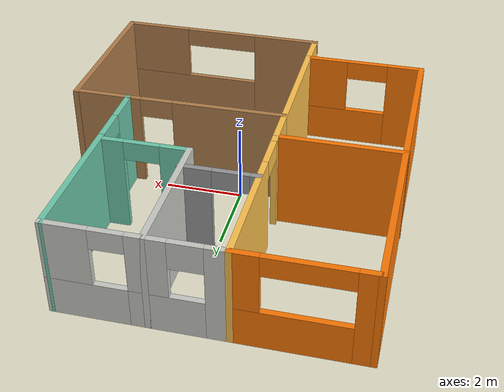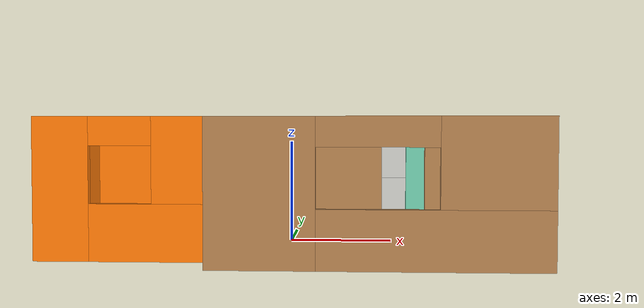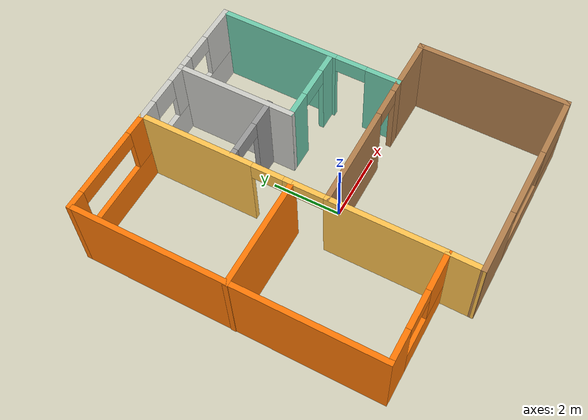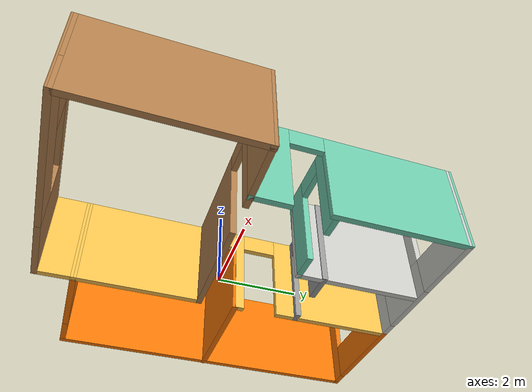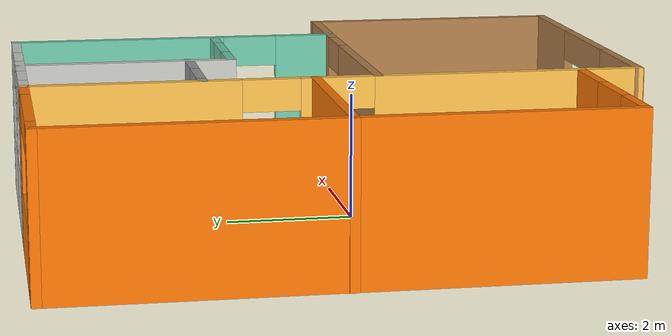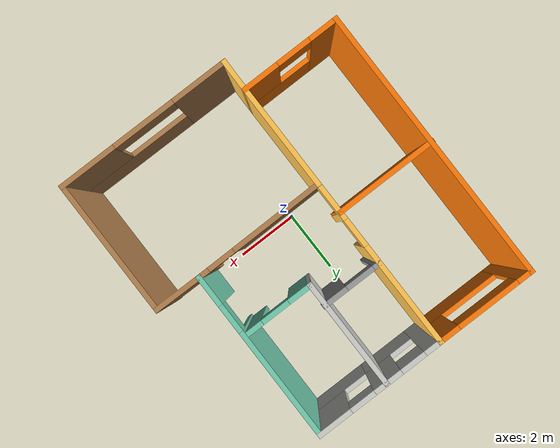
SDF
<?xml version='1.0'?>
<sdf version='1.6'>
  <model name='groundfloor'>
    <pose frame=''>0.105601 0.395796 0 0 -0 0</pose>
    <link name='Wall_16'>
      <collision name='Wall_16_Collision'>
        <geometry>
          <box>
            <size>8.75 0.15 2.5</size>
          </box>
        </geometry>
        <pose frame=''>0 0 1.25 0 -0 0</pose>
      </collision>
      <visual name='Wall_16_Visual'>
        <pose frame=''>0 0 1.25 0 -0 0</pose>
        <geometry>
          <box>
            <size>8.75 0.15 2.5</size>
          </box>
        </geometry>
        <material>
          <script>
            <uri>file://media/materials/scripts/gazebo.material</uri>
            <name>Gazebo/Grey</name>
          </script>
          <ambient>0.996078 0.47451 0.0196078 1</ambient>
        </material>
        <meta>
          <layer>0</layer>
        </meta>
      </visual>
      <pose frame=''>-4.29827 0.476573 0 0 0 -1.5708</pose>
    </link>
    <link name='Wall_17'>
      <pose frame=''>-2.74827 -3.82343 0 0 -0 0</pose>
      <visual name='Wall_17_Visual_0'>
        <pose frame=''>-1.1364 0 1.25 0 -0 0</pose>
        <geometry>
          <box>
            <size>0.97721 0.15 2.5</size>
          </box>
        </geometry>
        <material>
          <script>
            <uri>file://media/materials/scripts/gazebo.material</uri>
            <name>Gazebo/Grey</name>
          </script>
          <ambient>0.996078 0.47451 0.0196078 1</ambient>
        </material>
        <meta>
          <layer>0</layer>
        </meta>
      </visual>
      <collision name='Wall_17_Collision_0'>
        <geometry>
          <box>
            <size>0.97721 0.15 2.5</size>
          </box>
        </geometry>
        <pose frame=''>-1.1364 0 1.25 0 -0 0</pose>
      </collision>
      <visual name='Wall_17_Visual_1'>
        <pose frame=''>0.488605 0 0.5 0 -0 0</pose>
        <geometry>
          <box>
            <size>2.27279 0.15 1</size>
          </box>
        </geometry>
        <material>
          <script>
            <uri>file://media/materials/scripts/gazebo.material</uri>
            <name>Gazebo/Grey</name>
          </script>
          <ambient>0.996078 0.47451 0.0196078 1</ambient>
        </material>
        <meta>
          <layer>0</layer>
        </meta>
      </visual>
      <collision name='Wall_17_Collision_1'>
        <geometry>
          <box>
            <size>2.27279 0.15 1</size>
          </box>
        </geometry>
        <pose frame=''>0.488605 0 0.5 0 -0 0</pose>
      </collision>
      <visual name='Wall_17_Visual_2'>
        <pose frame=''>1.0331 0 1.75 0 -0 0</pose>
        <geometry>
          <box>
            <size>1.18379 0.15 1.5</size>
          </box>
        </geometry>
        <material>
          <script>
            <uri>file://media/materials/scripts/gazebo.material</uri>
            <name>Gazebo/Grey</name>
          </script>
          <ambient>0.996078 0.47451 0.0196078 1</ambient>
        </material>
        <meta>
          <layer>0</layer>
        </meta>
      </visual>
      <collision name='Wall_17_Collision_2'>
        <geometry>
          <box>
            <size>1.18379 0.15 1.5</size>
          </box>
        </geometry>
        <pose frame=''>1.0331 0 1.75 0 -0 0</pose>
      </collision>
      <visual name='Wall_17_Visual_3'>
        <pose frame=''>-0.10329 0 2.25 0 -0 0</pose>
        <geometry>
          <box>
            <size>1.089 0.15 0.5</size>
          </box>
        </geometry>
        <material>
          <script>
            <uri>file://media/materials/scripts/gazebo.material</uri>
            <name>Gazebo/Grey</name>
          </script>
          <ambient>0.996078 0.47451 0.0196078 1</ambient>
        </material>
        <meta>
          <layer>0</layer>
        </meta>
      </visual>
      <collision name='Wall_17_Collision_3'>
        <geometry>
          <box>
            <size>1.089 0.15 0.5</size>
          </box>
        </geometry>
        <pose frame=''>-0.10329 0 2.25 0 -0 0</pose>
      </collision>
    </link>
    <link name='Wall_18'>
      <pose frame=''>-1.19827 0.476573 0 0 -0 1.5708</pose>
      <visual name='Wall_18_Visual_0'>
        <pose frame=''>-2.69425 0 1.25 0 -0 0</pose>
        <geometry>
          <box>
            <size>3.3615 0.15 2.5</size>
          </box>
        </geometry>
        <material>
          <script>
            <uri>file://media/materials/scripts/gazebo.material</uri>
            <name>Gazebo/Grey</name>
          </script>
          <ambient>1 0.764706 0.305882 1</ambient>
        </material>
        <meta>
          <layer>0</layer>
        </meta>
      </visual>
      <collision name='Wall_18_Collision_0'>
        <geometry>
          <box>
            <size>3.3615 0.15 2.5</size>
          </box>
        </geometry>
        <pose frame=''>-2.69425 0 1.25 0 -0 0</pose>
      </collision>
      <visual name='Wall_18_Visual_1'>
        <pose frame=''>0.008535 0 1.25 0 -0 0</pose>
        <geometry>
          <box>
            <size>0.244078 0.15 2.5</size>
          </box>
        </geometry>
        <material>
          <script>
            <uri>file://media/materials/scripts/gazebo.material</uri>
            <name>Gazebo/Grey</name>
          </script>
          <ambient>1 0.764706 0.305882 1</ambient>
        </material>
        <meta>
          <layer>0</layer>
        </meta>
      </visual>
      <collision name='Wall_18_Collision_1'>
        <geometry>
          <box>
            <size>0.244078 0.15 2.5</size>
          </box>
        </geometry>
        <pose frame=''>0.008535 0 1.25 0 -0 0</pose>
      </collision>
      <visual name='Wall_18_Visual_2'>
        <pose frame=''>2.70279 0 1.25 0 -0 0</pose>
        <geometry>
          <box>
            <size>3.34443 0.15 2.5</size>
          </box>
        </geometry>
        <material>
          <script>
            <uri>file://media/materials/scripts/gazebo.material</uri>
            <name>Gazebo/Grey</name>
          </script>
          <ambient>1 0.764706 0.305882 1</ambient>
        </material>
        <meta>
          <layer>0</layer>
        </meta>
      </visual>
      <collision name='Wall_18_Collision_2'>
        <geometry>
          <box>
            <size>3.34443 0.15 2.5</size>
          </box>
        </geometry>
        <pose frame=''>2.70279 0 1.25 0 -0 0</pose>
      </collision>
      <visual name='Wall_18_Visual_3'>
        <pose frame=''>-0.563504 0 2.25 0 -0 0</pose>
        <geometry>
          <box>
            <size>0.9 0.15 0.5</size>
          </box>
        </geometry>
        <material>
          <script>
            <uri>file://media/materials/scripts/gazebo.material</uri>
            <name>Gazebo/Grey</name>
          </script>
          <ambient>1 0.764706 0.305882 1</ambient>
        </material>
        <meta>
          <layer>0</layer>
        </meta>
      </visual>
      <collision name='Wall_18_Collision_3'>
        <geometry>
          <box>
            <size>0.9 0.15 0.5</size>
          </box>
        </geometry>
        <pose frame=''>-0.563504 0 2.25 0 -0 0</pose>
      </collision>
      <visual name='Wall_18_Visual_4'>
        <pose frame=''>0.580574 0 2.25 0 -0 0</pose>
        <geometry>
          <box>
            <size>0.9 0.15 0.5</size>
          </box>
        </geometry>
        <material>
          <script>
            <uri>file://media/materials/scripts/gazebo.material</uri>
            <name>Gazebo/Grey</name>
          </script>
          <ambient>1 0.764706 0.305882 1</ambient>
        </material>
        <meta>
          <layer>0</layer>
        </meta>
      </visual>
      <collision name='Wall_18_Collision_4'>
        <geometry>
          <box>
            <size>0.9 0.15 0.5</size>
          </box>
        </geometry>
        <pose frame=''>0.580574 0 2.25 0 -0 0</pose>
      </collision>
    </link>
    <link name='Wall_19'>
      <pose frame=''>0.851726 4.77657 0 0 -0 0</pose>
      <visual name='Wall_19_Visual_0'>
        <pose frame=''>-1.82787 0 1.25 0 -0 0</pose>
        <geometry>
          <box>
            <size>0.594267 0.15 2.5</size>
          </box>
        </geometry>
        <material>
          <script>
            <uri>file://media/materials/scripts/gazebo.material</uri>
            <name>Gazebo/CeilingTiled</name>
          </script>
          <ambient>0.435294 0.796078 0.67451 1</ambient>
        </material>
        <meta>
          <layer>0</layer>
        </meta>
      </visual>
      <collision name='Wall_19_Collision_0'>
        <geometry>
          <box>
            <size>0.594267 0.15 2.5</size>
          </box>
        </geometry>
        <pose frame=''>-1.82787 0 1.25 0 -0 0</pose>
      </collision>
      <visual name='Wall_19_Visual_1'>
        <pose frame=''>-0.671108 0 0.5 0 -0 0</pose>
        <geometry>
          <box>
            <size>1.71925 0.15 1</size>
          </box>
        </geometry>
        <material>
          <script>
            <uri>file://media/materials/scripts/gazebo.material</uri>
            <name>Gazebo/CeilingTiled</name>
          </script>
          <ambient>0.435294 0.796078 0.67451 1</ambient>
        </material>
        <meta>
          <layer>0</layer>
        </meta>
      </visual>
      <collision name='Wall_19_Collision_1'>
        <geometry>
          <box>
            <size>1.71925 0.15 1</size>
          </box>
        </geometry>
        <pose frame=''>-0.671108 0 0.5 0 -0 0</pose>
      </collision>
      <visual name='Wall_19_Visual_2'>
        <pose frame=''>1.15676 0 0.5 0 -0 0</pose>
        <geometry>
          <box>
            <size>1.93648 0.15 1</size>
          </box>
        </geometry>
        <material>
          <script>
            <uri>file://media/materials/scripts/gazebo.material</uri>
            <name>Gazebo/CeilingTiled</name>
          </script>
          <ambient>0.435294 0.796078 0.67451 1</ambient>
        </material>
        <meta>
          <layer>0</layer>
        </meta>
      </visual>
      <collision name='Wall_19_Collision_2'>
        <geometry>
          <box>
            <size>1.93648 0.15 1</size>
          </box>
        </geometry>
        <pose frame=''>1.15676 0 0.5 0 -0 0</pose>
      </collision>
      <visual name='Wall_19_Visual_3'>
        <pose frame=''>1.55676 0 1.75 0 -0 0</pose>
        <geometry>
          <box>
            <size>1.13648 0.15 1.5</size>
          </box>
        </geometry>
        <material>
          <script>
            <uri>file://media/materials/scripts/gazebo.material</uri>
            <name>Gazebo/CeilingTiled</name>
          </script>
          <ambient>0.435294 0.796078 0.67451 1</ambient>
        </material>
        <meta>
          <layer>0</layer>
        </meta>
      </visual>
      <collision name='Wall_19_Collision_3'>
        <geometry>
          <box>
            <size>1.13648 0.15 1.5</size>
          </box>
        </geometry>
        <pose frame=''>1.55676 0 1.75 0 -0 0</pose>
      </collision>
      <visual name='Wall_19_Visual_4'>
        <pose frame=''>-0.271108 0 1.75 0 -0 0</pose>
        <geometry>
          <box>
            <size>0.91925 0.15 1.5</size>
          </box>
        </geometry>
        <material>
          <script>
            <uri>file://media/materials/scripts/gazebo.material</uri>
            <name>Gazebo/CeilingTiled</name>
          </script>
          <ambient>0.435294 0.796078 0.67451 1</ambient>
        </material>
        <meta>
          <layer>0</layer>
        </meta>
      </visual>
      <collision name='Wall_19_Collision_4'>
        <geometry>
          <box>
            <size>0.91925 0.15 1.5</size>
          </box>
        </geometry>
        <pose frame=''>-0.271108 0 1.75 0 -0 0</pose>
      </collision>
      <visual name='Wall_19_Visual_5'>
        <pose frame=''>-0.271108 0 1.75 0 -0 0</pose>
        <geometry>
          <box>
            <size>0.91925 0.15 1.5</size>
          </box>
        </geometry>
        <material>
          <script>
            <uri>file://media/materials/scripts/gazebo.material</uri>
            <name>Gazebo/CeilingTiled</name>
          </script>
          <ambient>0.435294 0.796078 0.67451 1</ambient>
        </material>
        <meta>
          <layer>0</layer>
        </meta>
      </visual>
      <collision name='Wall_19_Collision_5'>
        <geometry>
          <box>
            <size>0.91925 0.15 1.5</size>
          </box>
        </geometry>
        <pose frame=''>-0.271108 0 1.75 0 -0 0</pose>
      </collision>
      <visual name='Wall_19_Visual_6'>
        <pose frame=''>-1.13073 0 2.15 0 -0 0</pose>
        <geometry>
          <box>
            <size>0.8 0.15 0.7</size>
          </box>
        </geometry>
        <material>
          <script>
            <uri>file://media/materials/scripts/gazebo.material</uri>
            <name>Gazebo/CeilingTiled</name>
          </script>
          <ambient>0.435294 0.796078 0.67451 1</ambient>
        </material>
        <meta>
          <layer>0</layer>
        </meta>
      </visual>
      <collision name='Wall_19_Collision_6'>
        <geometry>
          <box>
            <size>0.8 0.15 0.7</size>
          </box>
        </geometry>
        <pose frame=''>-1.13073 0 2.15 0 -0 0</pose>
      </collision>
      <visual name='Wall_19_Visual_7'>
        <pose frame=''>0.588517 0 2.25 0 -0 0</pose>
        <geometry>
          <box>
            <size>0.8 0.15 0.5</size>
          </box>
        </geometry>
        <material>
          <script>
            <uri>file://media/materials/scripts/gazebo.material</uri>
            <name>Gazebo/CeilingTiled</name>
          </script>
          <ambient>0.435294 0.796078 0.67451 1</ambient>
        </material>
        <meta>
          <layer>0</layer>
        </meta>
      </visual>
      <collision name='Wall_19_Collision_7'>
        <geometry>
          <box>
            <size>0.8 0.15 0.5</size>
          </box>
        </geometry>
        <pose frame=''>0.588517 0 2.25 0 -0 0</pose>
      </collision>
      <visual name='Wall_19_Visual_8'>
        <pose frame=''>0.588517 0 2.25 0 -0 0</pose>
        <geometry>
          <box>
            <size>0.8 0.15 0.5</size>
          </box>
        </geometry>
        <material>
          <script>
            <uri>file://media/materials/scripts/gazebo.material</uri>
            <name>Gazebo/CeilingTiled</name>
          </script>
          <ambient>0.435294 0.796078 0.67451 1</ambient>
        </material>
        <meta>
          <layer>0</layer>
        </meta>
      </visual>
      <collision name='Wall_19_Collision_8'>
        <geometry>
          <box>
            <size>0.8 0.15 0.5</size>
          </box>
        </geometry>
        <pose frame=''>0.588517 0 2.25 0 -0 0</pose>
      </collision>
    </link>
    <link name='Wall_20'>
      <pose frame=''>2.89412 2.1049 0 0 0 -1.57364</pose>
      <visual name='Wall_20_Visual_0'>
        <pose frame=''>-0.956226 0 1.25 0 -0 0</pose>
        <geometry>
          <box>
            <size>3.58091 0.15 2.5</size>
          </box>
        </geometry>
        <material>
          <script>
            <uri>file://media/materials/scripts/gazebo.material</uri>
            <name>Gazebo/Grey</name>
          </script>
          <ambient>0.435294 0.796078 0.67451 1</ambient>
        </material>
        <meta>
          <layer>0</layer>
        </meta>
      </visual>
      <collision name='Wall_20_Collision_0'>
        <geometry>
          <box>
            <size>3.58091 0.15 2.5</size>
          </box>
        </geometry>
        <pose frame=''>-0.956226 0 1.25 0 -0 0</pose>
      </collision>
      <visual name='Wall_20_Visual_1'>
        <pose frame=''>2.24045 0 1.25 0 -0 0</pose>
        <geometry>
          <box>
            <size>1.01245 0.15 2.5</size>
          </box>
        </geometry>
        <material>
          <script>
            <uri>file://media/materials/scripts/gazebo.material</uri>
            <name>Gazebo/Grey</name>
          </script>
          <ambient>0.435294 0.796078 0.67451 1</ambient>
        </material>
        <meta>
          <layer>0</layer>
        </meta>
      </visual>
      <collision name='Wall_20_Collision_1'>
        <geometry>
          <box>
            <size>1.01245 0.15 2.5</size>
          </box>
        </geometry>
        <pose frame=''>2.24045 0 1.25 0 -0 0</pose>
      </collision>
      <visual name='Wall_20_Visual_2'>
        <pose frame=''>1.28423 0 2.25 0 -0 0</pose>
        <geometry>
          <box>
            <size>0.9 0.15 0.5</size>
          </box>
        </geometry>
        <material>
          <script>
            <uri>file://media/materials/scripts/gazebo.material</uri>
            <name>Gazebo/Grey</name>
          </script>
          <ambient>0.435294 0.796078 0.67451 1</ambient>
        </material>
        <meta>
          <layer>0</layer>
        </meta>
      </visual>
      <collision name='Wall_20_Collision_2'>
        <geometry>
          <box>
            <size>0.9 0.15 0.5</size>
          </box>
        </geometry>
        <pose frame=''>1.28423 0 2.25 0 -0 0</pose>
      </collision>
    </link>
    <link name='Wall_21'>
      <collision name='Wall_21_Collision'>
        <geometry>
          <box>
            <size>1.57628 0.15 2.5</size>
          </box>
        </geometry>
        <pose frame=''>0 0 1.25 0 -0 0</pose>
      </collision>
      <visual name='Wall_21_Visual'>
        <pose frame=''>0 0 1.25 0 -0 0</pose>
        <geometry>
          <box>
            <size>1.57628 0.15 2.5</size>
          </box>
        </geometry>
        <material>
          <script>
            <uri>file://media/materials/scripts/gazebo.material</uri>
            <name>Gazebo/Wood</name>
          </script>
          <ambient>1 0.764706 0.305882 1</ambient>
        </material>
        <meta>
          <layer>0</layer>
        </meta>
      </visual>
      <pose frame=''>3.59962 -0.589202 0 0 0 -0.010132</pose>
    </link>
    <link name='Wall_26'>
      <collision name='Wall_26_Collision'>
        <geometry>
          <box>
            <size>3.25 0.15 2.5</size>
          </box>
        </geometry>
        <pose frame=''>0 0 1.25 0 -0 0</pose>
      </collision>
      <visual name='Wall_26_Visual'>
        <pose frame=''>0 0 1.25 0 -0 0</pose>
        <geometry>
          <box>
            <size>3.25 0.15 2.5</size>
          </box>
        </geometry>
        <material>
          <script>
            <uri>file://media/materials/scripts/gazebo.material</uri>
            <name>Gazebo/Grey</name>
          </script>
          <ambient>0.996078 0.47451 0.0196078 1</ambient>
        </material>
        <meta>
          <layer>0</layer>
        </meta>
      </visual>
      <pose frame=''>-2.76348 0.366035 0 0 -0 0</pose>
    </link>
    <link name='Wall_28'>
      <collision name='Wall_28_Collision'>
        <geometry>
          <box>
            <size>3.5 0.15 2.5</size>
          </box>
        </geometry>
        <pose frame=''>0 0 1.25 0 -0 0</pose>
      </collision>
      <visual name='Wall_28_Visual'>
        <pose frame=''>0 0 1.25 0 -0 0</pose>
        <geometry>
          <box>
            <size>3.5 0.15 2.5</size>
          </box>
        </geometry>
        <material>
          <script>
            <uri>file://media/materials/scripts/gazebo.material</uri>
            <name>Gazebo/CeilingTiled</name>
          </script>
          <ambient>0.435294 0.796078 0.67451 1</ambient>
        </material>
        <meta>
          <layer>0</layer>
        </meta>
      </visual>
      <pose frame=''>0.64457 3.10157 0 0 0 -1.5708</pose>
    </link>
    <link name='Wall_29'>
      <pose frame=''>1.69457 1.42657 0 0 -0 0</pose>
      <visual name='Wall_29_Visual_0'>
        <pose frame=''>-0.719809 0 1.25 0 -0 0</pose>
        <geometry>
          <box>
            <size>0.810381 0.15 2.5</size>
          </box>
        </geometry>
        <material>
          <script>
            <uri>file://media/materials/scripts/gazebo.material</uri>
            <name>Gazebo/Grey</name>
          </script>
          <ambient>0.435294 0.796078 0.67451 1</ambient>
        </material>
        <meta>
          <layer>0</layer>
        </meta>
      </visual>
      <collision name='Wall_29_Collision_0'>
        <geometry>
          <box>
            <size>0.810381 0.15 2.5</size>
          </box>
        </geometry>
        <pose frame=''>-0.719809 0 1.25 0 -0 0</pose>
      </collision>
      <visual name='Wall_29_Visual_1'>
        <pose frame=''>0.855191 0 1.25 0 -0 0</pose>
        <geometry>
          <box>
            <size>0.539619 0.15 2.5</size>
          </box>
        </geometry>
        <material>
          <script>
            <uri>file://media/materials/scripts/gazebo.material</uri>
            <name>Gazebo/Grey</name>
          </script>
          <ambient>0.435294 0.796078 0.67451 1</ambient>
        </material>
        <meta>
          <layer>0</layer>
        </meta>
      </visual>
      <collision name='Wall_29_Collision_1'>
        <geometry>
          <box>
            <size>0.539619 0.15 2.5</size>
          </box>
        </geometry>
        <pose frame=''>0.855191 0 1.25 0 -0 0</pose>
      </collision>
      <visual name='Wall_29_Visual_2'>
        <pose frame=''>0.135381 0 2.25 0 -0 0</pose>
        <geometry>
          <box>
            <size>0.9 0.15 0.5</size>
          </box>
        </geometry>
        <material>
          <script>
            <uri>file://media/materials/scripts/gazebo.material</uri>
            <name>Gazebo/Grey</name>
          </script>
          <ambient>0.435294 0.796078 0.67451 1</ambient>
        </material>
        <meta>
          <layer>0</layer>
        </meta>
      </visual>
      <collision name='Wall_29_Collision_2'>
        <geometry>
          <box>
            <size>0.9 0.15 0.5</size>
          </box>
        </geometry>
        <pose frame=''>0.135381 0 2.25 0 -0 0</pose>
      </collision>
    </link>
    <link name='Wall_31'>
      <pose frame=''>-0.25548 2.09983 0 0 -0 0</pose>
      <visual name='Wall_31_Visual_0'>
        <pose frame=''>-0.865813 0 1.25 0 -0 0</pose>
        <geometry>
          <box>
            <size>0.268373 0.15 2.5</size>
          </box>
        </geometry>
        <material>
          <script>
            <uri>file://media/materials/scripts/gazebo.material</uri>
            <name>Gazebo/Grey</name>
          </script>
          <ambient>1 1 1 1</ambient>
        </material>
        <meta>
          <layer>0</layer>
        </meta>
      </visual>
      <collision name='Wall_31_Collision_0'>
        <geometry>
          <box>
            <size>0.268373 0.15 2.5</size>
          </box>
        </geometry>
        <pose frame=''>-0.865813 0 1.25 0 -0 0</pose>
      </collision>
      <visual name='Wall_31_Visual_1'>
        <pose frame=''>0.584187 0 1.25 0 -0 0</pose>
        <geometry>
          <box>
            <size>0.831627 0.15 2.5</size>
          </box>
        </geometry>
        <material>
          <script>
            <uri>file://media/materials/scripts/gazebo.material</uri>
            <name>Gazebo/Grey</name>
          </script>
          <ambient>1 1 1 1</ambient>
        </material>
        <meta>
          <layer>0</layer>
        </meta>
      </visual>
      <collision name='Wall_31_Collision_1'>
        <geometry>
          <box>
            <size>0.831627 0.15 2.5</size>
          </box>
        </geometry>
        <pose frame=''>0.584187 0 1.25 0 -0 0</pose>
      </collision>
      <visual name='Wall_31_Visual_2'>
        <pose frame=''>-0.281627 0 2.25 0 -0 0</pose>
        <geometry>
          <box>
            <size>0.9 0.15 0.5</size>
          </box>
        </geometry>
        <material>
          <script>
            <uri>file://media/materials/scripts/gazebo.material</uri>
            <name>Gazebo/Grey</name>
          </script>
          <ambient>1 1 1 1</ambient>
        </material>
        <meta>
          <layer>0</layer>
        </meta>
      </visual>
      <collision name='Wall_31_Collision_2'>
        <geometry>
          <box>
            <size>0.9 0.15 0.5</size>
          </box>
        </geometry>
        <pose frame=''>-0.281627 0 2.25 0 -0 0</pose>
      </collision>
    </link>
    <link name='Wall_33'>
      <pose frame=''>0.855467 -0.593331 0 0 -0 0.005591</pose>
      <visual name='Wall_33_Visual_0'>
        <pose frame=''>-0.629534 0 1.25 0 -0 0</pose>
        <geometry>
          <box>
            <size>2.9531 0.15 2.5</size>
          </box>
        </geometry>
        <material>
          <script>
            <uri>file://media/materials/scripts/gazebo.material</uri>
            <name>Gazebo/Wood</name>
          </script>
          <ambient>1 0.764706 0.305882 1</ambient>
        </material>
        <meta>
          <layer>0</layer>
        </meta>
      </visual>
      <collision name='Wall_33_Collision_0'>
        <geometry>
          <box>
            <size>2.9531 0.15 2.5</size>
          </box>
        </geometry>
        <pose frame=''>-0.629534 0 1.25 0 -0 0</pose>
      </collision>
      <visual name='Wall_33_Visual_1'>
        <pose frame=''>1.90372 0 1.25 0 -0 0</pose>
        <geometry>
          <box>
            <size>0.404732 0.15 2.5</size>
          </box>
        </geometry>
        <material>
          <script>
            <uri>file://media/materials/scripts/gazebo.material</uri>
            <name>Gazebo/Wood</name>
          </script>
          <ambient>1 0.764706 0.305882 1</ambient>
        </material>
        <meta>
          <layer>0</layer>
        </meta>
      </visual>
      <collision name='Wall_33_Collision_1'>
        <geometry>
          <box>
            <size>0.404732 0.15 2.5</size>
          </box>
        </geometry>
        <pose frame=''>1.90372 0 1.25 0 -0 0</pose>
      </collision>
      <visual name='Wall_33_Visual_2'>
        <pose frame=''>1.27418 0 2.25 0 -0 0</pose>
        <geometry>
          <box>
            <size>0.854336 0.15 0.5</size>
          </box>
        </geometry>
        <material>
          <script>
            <uri>file://media/materials/scripts/gazebo.material</uri>
            <name>Gazebo/Wood</name>
          </script>
          <ambient>1 0.764706 0.305882 1</ambient>
        </material>
        <meta>
          <layer>0</layer>
        </meta>
      </visual>
      <collision name='Wall_33_Collision_2'>
        <geometry>
          <box>
            <size>0.854336 0.15 0.5</size>
          </box>
        </geometry>
        <pose frame=''>1.27418 0 2.25 0 -0 0</pose>
      </collision>
    </link>
    <link name='Wall_35'>
      <pose frame=''>-2.74827 4.77657 0 0 -0 0</pose>
      <visual name='Wall_35_Visual_0'>
        <pose frame=''>-1.35587 0 1.25 0 -0 0</pose>
        <geometry>
          <box>
            <size>0.538249 0.15 2.5</size>
          </box>
        </geometry>
        <material>
          <script>
            <uri>file://media/materials/scripts/gazebo.material</uri>
            <name>Gazebo/Grey</name>
          </script>
          <ambient>0.996078 0.47451 0.0196078 1</ambient>
        </material>
        <meta>
          <layer>0</layer>
        </meta>
      </visual>
      <collision name='Wall_35_Collision_0'>
        <geometry>
          <box>
            <size>0.538249 0.15 2.5</size>
          </box>
        </geometry>
        <pose frame=''>-1.35587 0 1.25 0 -0 0</pose>
      </collision>
      <visual name='Wall_35_Visual_1'>
        <pose frame=''>0.269125 0 0.5 0 -0 0</pose>
        <geometry>
          <box>
            <size>2.71175 0.15 1</size>
          </box>
        </geometry>
        <material>
          <script>
            <uri>file://media/materials/scripts/gazebo.material</uri>
            <name>Gazebo/Grey</name>
          </script>
          <ambient>0.996078 0.47451 0.0196078 1</ambient>
        </material>
        <meta>
          <layer>0</layer>
        </meta>
      </visual>
      <collision name='Wall_35_Collision_1'>
        <geometry>
          <box>
            <size>2.71175 0.15 1</size>
          </box>
        </geometry>
        <pose frame=''>0.269125 0 0.5 0 -0 0</pose>
      </collision>
      <visual name='Wall_35_Visual_2'>
        <pose frame=''>1.26913 0 1.75 0 -0 0</pose>
        <geometry>
          <box>
            <size>0.711751 0.15 1.5</size>
          </box>
        </geometry>
        <material>
          <script>
            <uri>file://media/materials/scripts/gazebo.material</uri>
            <name>Gazebo/Grey</name>
          </script>
          <ambient>0.996078 0.47451 0.0196078 1</ambient>
        </material>
        <meta>
          <layer>0</layer>
        </meta>
      </visual>
      <collision name='Wall_35_Collision_2'>
        <geometry>
          <box>
            <size>0.711751 0.15 1.5</size>
          </box>
        </geometry>
        <pose frame=''>1.26913 0 1.75 0 -0 0</pose>
      </collision>
      <visual name='Wall_35_Visual_3'>
        <pose frame=''>-0.086751 0 2.25 0 -0 0</pose>
        <geometry>
          <box>
            <size>2 0.15 0.5</size>
          </box>
        </geometry>
        <material>
          <script>
            <uri>file://media/materials/scripts/gazebo.material</uri>
            <name>Gazebo/Grey</name>
          </script>
          <ambient>0.996078 0.47451 0.0196078 1</ambient>
        </material>
        <meta>
          <layer>0</layer>
        </meta>
      </visual>
      <collision name='Wall_35_Collision_3'>
        <geometry>
          <box>
            <size>2 0.15 0.5</size>
          </box>
        </geometry>
        <pose frame=''>-0.086751 0 2.25 0 -0 0</pose>
      </collision>
    </link>
    <link name='Wall_37'>
      <collision name='Wall_37_Collision'>
        <geometry>
          <box>
            <size>1.06868 0.15 2.5</size>
          </box>
        </geometry>
        <pose frame=''>0 0 1.25 0 -0 0</pose>
      </collision>
      <visual name='Wall_37_Visual'>
        <pose frame=''>0 0 1.25 0 -0 0</pose>
        <geometry>
          <box>
            <size>1.06868 0.15 2.5</size>
          </box>
        </geometry>
        <material>
          <script>
            <uri>file://media/materials/scripts/gazebo.material</uri>
            <name>Gazebo/Grey</name>
          </script>
          <ambient>1 0.764706 0.305882 1</ambient>
        </material>
        <meta>
          <layer>0</layer>
        </meta>
      </visual>
      <pose frame=''>-1.20399 -4.28273 0 0 0 -1.58324</pose>
    </link>
    <link name='Wall_38'>
      <pose frame=''>1.54579 -4.76497 0 0 0 -0.004173</pose>
      <visual name='Wall_38_Visual_0'>
        <pose frame=''>-1.92017 0 1.25 0 -0 0</pose>
        <geometry>
          <box>
            <size>1.8207 0.15 2.5</size>
          </box>
        </geometry>
        <material>
          <script>
            <uri>file://media/materials/scripts/gazebo.material</uri>
            <name>Gazebo/Wood</name>
          </script>
          <ambient>1 0.764706 0.305882 1</ambient>
        </material>
        <meta>
          <layer>0</layer>
        </meta>
      </visual>
      <collision name='Wall_38_Collision_0'>
        <geometry>
          <box>
            <size>1.8207 0.15 2.5</size>
          </box>
        </geometry>
        <pose frame=''>-1.92017 0 1.25 0 -0 0</pose>
      </collision>
      <visual name='Wall_38_Visual_1'>
        <pose frame=''>0.910351 0 0.5 0 -0 0</pose>
        <geometry>
          <box>
            <size>3.84035 0.15 1</size>
          </box>
        </geometry>
        <material>
          <script>
            <uri>file://media/materials/scripts/gazebo.material</uri>
            <name>Gazebo/Wood</name>
          </script>
          <ambient>1 0.764706 0.305882 1</ambient>
        </material>
        <meta>
          <layer>0</layer>
        </meta>
      </visual>
      <collision name='Wall_38_Collision_1'>
        <geometry>
          <box>
            <size>3.84035 0.15 1</size>
          </box>
        </geometry>
        <pose frame=''>0.910351 0 0.5 0 -0 0</pose>
      </collision>
      <visual name='Wall_38_Visual_2'>
        <pose frame=''>1.91035 0 1.75 0 -0 0</pose>
        <geometry>
          <box>
            <size>1.84035 0.15 1.5</size>
          </box>
        </geometry>
        <material>
          <script>
            <uri>file://media/materials/scripts/gazebo.material</uri>
            <name>Gazebo/Wood</name>
          </script>
          <ambient>1 0.764706 0.305882 1</ambient>
        </material>
        <meta>
          <layer>0</layer>
        </meta>
      </visual>
      <collision name='Wall_38_Collision_2'>
        <geometry>
          <box>
            <size>1.84035 0.15 1.5</size>
          </box>
        </geometry>
        <pose frame=''>1.91035 0 1.75 0 -0 0</pose>
      </collision>
      <visual name='Wall_38_Visual_3'>
        <pose frame=''>-0.009823 0 2.25 0 -0 0</pose>
        <geometry>
          <box>
            <size>2 0.15 0.5</size>
          </box>
        </geometry>
        <material>
          <script>
            <uri>file://media/materials/scripts/gazebo.material</uri>
            <name>Gazebo/Wood</name>
          </script>
          <ambient>1 0.764706 0.305882 1</ambient>
        </material>
        <meta>
          <layer>0</layer>
        </meta>
      </visual>
      <collision name='Wall_38_Collision_3'>
        <geometry>
          <box>
            <size>2 0.15 0.5</size>
          </box>
        </geometry>
        <pose frame=''>-0.009823 0 2.25 0 -0 0</pose>
      </collision>
    </link>
    <link name='Wall_39'>
      <collision name='Wall_39_Collision'>
        <geometry>
          <box>
            <size>4.33013 0.15 2.5</size>
          </box>
        </geometry>
        <pose frame=''>0 0 1.25 0 -0 0</pose>
      </collision>
      <visual name='Wall_39_Visual'>
        <pose frame=''>0 0 1.25 0 -0 0</pose>
        <geometry>
          <box>
            <size>4.33013 0.15 2.5</size>
          </box>
        </geometry>
        <material>
          <script>
            <uri>file://media/materials/scripts/gazebo.material</uri>
            <name>Gazebo/Wood</name>
          </script>
          <ambient>1 0.764706 0.305882 1</ambient>
        </material>
        <meta>
          <layer>0</layer>
        </meta>
      </visual>
      <pose frame=''>4.30701 -2.67498 0 0 -0 1.56806</pose>
    </link>
    <static>1</static>
  </model>
</sdf>
